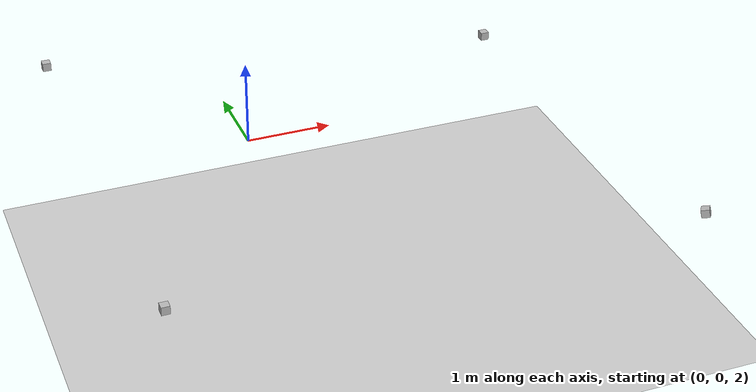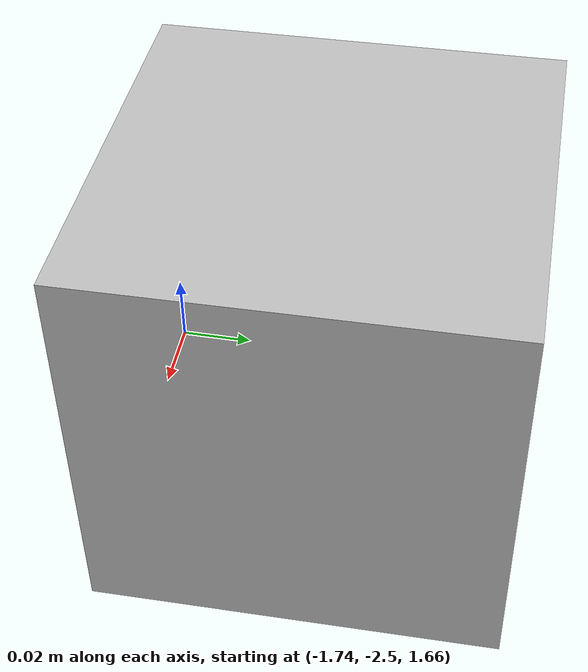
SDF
<sdf version="1.6">
 <world name="default">
  <light name="sun" type="directional">
   <pose>0 0 10 0 -0 0</pose>
   <diffuse>0.8 0.8 0.8 1</diffuse>
   <specular>0.1 0.1 0.1 1</specular>
   <attenuation>
    <range>1000</range>
    <constant>0.9</constant>
    <linear>0.01</linear>
    <quadratic>0.001</quadratic>
   </attenuation>
   <direction>-0.5 0.5 -1</direction>
  </light>
  <model name="ground_plane">
   <static>1</static>
   <link name="link">
    <collision name="collision">
     <geometry><plane><normal>0 0 1</normal><size>100 100</size></plane></geometry>
     <surface><friction><ode><mu>100</mu><mu2>50</mu2></ode></friction></surface>
    </collision>
    <visual name="visual">
     <cast_shadows>0</cast_shadows>
     <geometry><plane><normal>0 0 1</normal><size>100 100</size></plane></geometry>
     <material>
      <script><uri>file://media/materials/scripts/gazebo.material</uri><name>Gazebo/Grey</name></script>
     </material>
    </visual>
   </link>
  </model>
  <gravity>0 0 -9.8</gravity>
  <magnetic_field>6e-06 2.3e-05 -4.2e-05</magnetic_field>
  <atmosphere type="adiabatic"/>
  <physics name="default_physics" default="0" type="ode">
   <max_step_size>0.001</max_step_size>
   <real_time_factor>1</real_time_factor>
   <real_time_update_rate>1000</real_time_update_rate>
  </physics>
  <scene><ambient>0.4 0.4 0.4 1</ambient><background>0.7 0.7 0.7 1</background><shadows>1</shadows></scene>
  <spherical_coordinates>
   <surface_model>EARTH_WGS84</surface_model>
   <latitude_deg>0</latitude_deg>
   <longitude_deg>0</longitude_deg>
   <elevation>0</elevation>
   <heading_deg>0</heading_deg>
  </spherical_coordinates>
  <model name="camera_1">
   <link name="link">
    <gravity>0</gravity>
    <pose>0.05 0.05 0.05 0 -0 0</pose>
    <inertial>
     <mass>0.1</mass>
     <inertia><ixx>1</ixx><ixy>0</ixy><ixz>0</ixz><iyy>1</iyy><iyz>0</iyz><izz>1</izz></inertia>
    </inertial>
    <visual name="visual"><geometry><box><size>0.1 0.1 0.1</size></box></geometry></visual>
    <sensor name="camera" type="camera">
     <camera name="__default__">
      <horizontal_fov>1.047</horizontal_fov>
      <image><width>320</width><height>240</height></image>
      <clip><near>0.1</near><far>100</far></clip>
     </camera>
     <always_on>1</always_on>
     <update_rate>30</update_rate>
     <visualize>1</visualize>
    </sensor>
   </link>
   <pose>-1.97453 1.96842 2.29614 0 -0 0</pose>
  </model>
  <model name="camera_2">
   <link name="link">
    <gravity>0</gravity>
    <pose>0.05 0.05 0.05 0 -0 0</pose>
    <inertial>
     <mass>0.1</mass>
     <inertia><ixx>1</ixx><ixy>0</ixy><ixz>0</ixz><iyy>1</iyy><iyz>0</iyz><izz>1</izz></inertia>
    </inertial>
    <visual name="visual"><geometry><box><size>0.1 0.1 0.1</size></box></geometry></visual>
    <sensor name="camera" type="camera">
     <camera name="__default__">
      <horizontal_fov>1.047</horizontal_fov>
      <image><width>320</width><height>240</height></image>
      <clip><near>0.1</near><far>100</far></clip>
     </camera>
     <always_on>1</always_on>
     <update_rate>30</update_rate>
     <visualize>1</visualize>
    </sensor>
   </link>
   <pose>3.51531 1.20742 2.07525 0 -0 0</pose>
  </model>
  <model name="camera_3">
   <link name="link">
    <gravity>0</gravity>
    <pose>0.05 0.05 0.05 0 -0 0</pose>
    <inertial>
     <mass>0.1</mass>
     <inertia><ixx>1</ixx><ixy>0</ixy><ixz>0</ixz><iyy>1</iyy><iyz>0</iyz><izz>1</izz></inertia>
    </inertial>
    <visual name="visual"><geometry><box><size>0.1 0.1 0.1</size></box></geometry></visual>
    <sensor name="camera" type="camera">
     <camera name="__default__">
      <horizontal_fov>1.047</horizontal_fov>
      <image><width>320</width><height>240</height></image>
      <clip><near>0.1</near><far>100</far></clip>
     </camera>
     <always_on>1</always_on>
     <update_rate>30</update_rate>
     <visualize>1</visualize>
    </sensor>
   </link>
   <pose>4.52095 -2.88722 1.7122 0 0.244347 2.52985</pose>
  </model>
  <model name="camera_4">
   <link name="link">
    <gravity>0</gravity>
    <pose>0.05 0.05 0.05 0 -0 0</pose>
    <inertial>
     <mass>0.1</mass>
     <inertia><ixx>1</ixx><ixy>0</ixy><ixz>0</ixz><iyy>1</iyy><iyz>0</iyz><izz>1</izz></inertia>
    </inertial>
    <visual name="visual"><geometry><box><size>0.1 0.1 0.1</size></box></geometry></visual>
    <sensor name="camera" type="camera">
     <camera name="__default__">
      <horizontal_fov>1.047</horizontal_fov>
      <image><width>320</width><height>240</height></image>
      <clip><near>0.1</near><far>100</far></clip>
     </camera>
     <always_on>1</always_on>
     <update_rate>30</update_rate>
     <visualize>1</visualize>
    </sensor>
   </link>
   <pose>-1.74119 -2.49849 1.66457 0 -0 0</pose>
  </model>
 </world>
</sdf>
